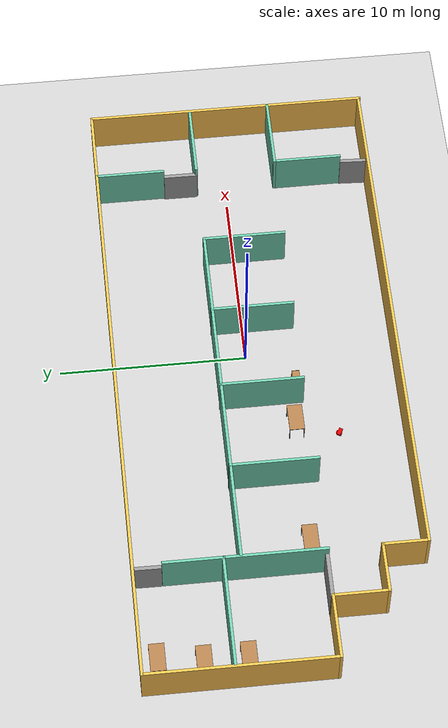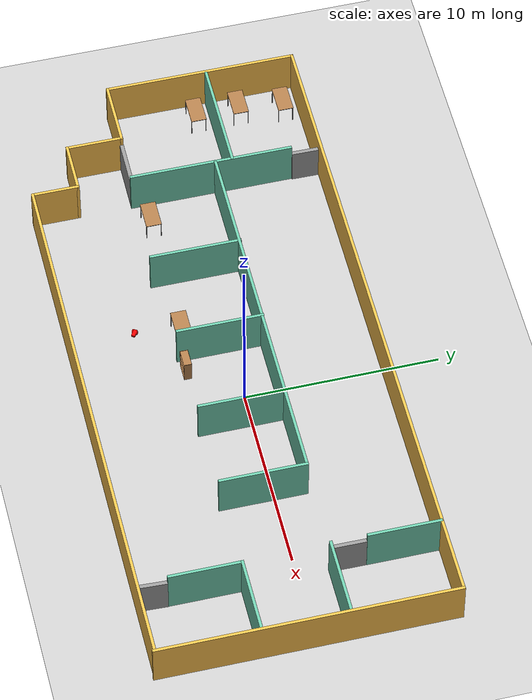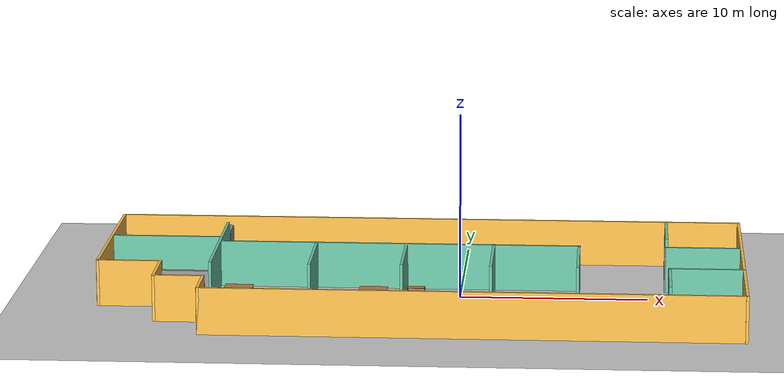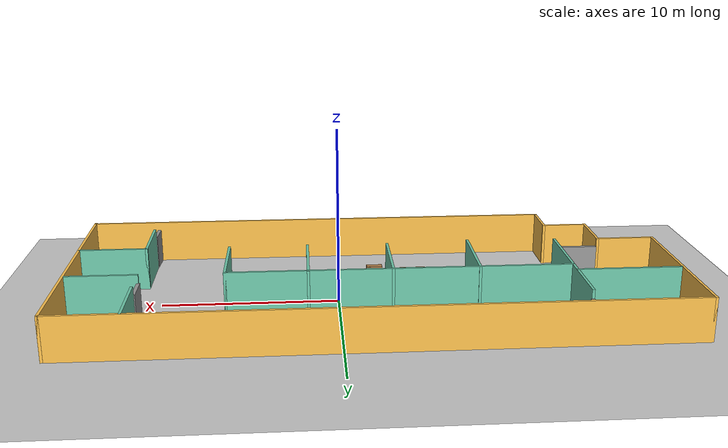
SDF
<sdf version="1.6">
 <world name="default">
  <model name="ground_plane">
   <static>1</static>
   <link name="link">
    <collision name="collision">
     <geometry><plane><normal>0 0 1</normal><size>100 100</size></plane></geometry>
     <surface><friction><ode><mu>100</mu><mu2>50</mu2></ode></friction></surface>
    </collision>
    <visual name="visual">
     <cast_shadows>0</cast_shadows>
     <geometry><plane><normal>0 0 1</normal><size>100 100</size></plane></geometry>
     <material>
      <script><uri>file://media/materials/scripts/gazebo.material</uri><name>Gazebo/Grey</name></script>
     </material>
    </visual>
   </link>
  </model>
  <model name="Building">
   <pose>-2.0428 -0.42646 0 0 -0 0</pose>
   <link name="Door_0">
    <collision name="Door_0_Collision">
     <geometry><box><size>2.58109 0.2 2</size></box></geometry>
     <pose>0 0 1 0 -0 0</pose>
    </collision>
    <visual name="Door_0_Visual">
     <pose>0 0 1 0 -0 0</pose>
     <geometry><box><size>2.58109 0.2 2</size></box></geometry>
     <material>
      <script><uri>file://media/materials/scripts/gazebo.material</uri><name>Gazebo/Grey</name></script>
     </material>
    </visual>
    <pose>-12.3535 -2.32405 0 0 -0 3.13435</pose>
   </link>
   <link name="Door_1">
    <collision name="Door_1_Collision">
     <geometry><box><size>1.8268 0.2 2</size></box></geometry>
     <pose>0 0 1 0 -0 0</pose>
    </collision>
    <visual name="Door_1_Visual">
     <pose>0 0 1 0 -0 0</pose>
     <geometry><box><size>1.8268 0.2 2</size></box></geometry>
     <material>
      <script><uri>file://media/materials/scripts/gazebo.material</uri><name>Gazebo/Grey</name></script>
     </material>
    </visual>
    <pose>13.0292 2.92693 0 0 -0 1.5655</pose>
   </link>
   <link name="Door_2">
    <collision name="Door_2_Collision">
     <geometry><box><size>1.47434 0.2 2</size></box></geometry>
     <pose>0 0 1 0 -0 0</pose>
    </collision>
    <visual name="Door_2_Visual">
     <pose>0 0 1 0 -0 0</pose>
     <geometry><box><size>1.47434 0.2 2</size></box></geometry>
     <material>
      <script><uri>file://media/materials/scripts/gazebo.material</uri><name>Gazebo/Grey</name></script>
     </material>
    </visual>
    <pose>13.1149 -6.73153 0 0 -0 1.52915</pose>
   </link>
   <link name="Door_3">
    <collision name="Door_3_Collision">
     <geometry><box><size>1.38773 0.2 2</size></box></geometry>
     <pose>0 0 1 0 -0 0</pose>
    </collision>
    <visual name="Door_3_Visual">
     <pose>0 0 1 0 -0 0</pose>
     <geometry><box><size>1.38773 0.2 2</size></box></geometry>
     <material>
      <script><uri>file://media/materials/scripts/gazebo.material</uri><name>Gazebo/Grey</name></script>
     </material>
    </visual>
    <pose>-11.0417 6.77121 0 0 0 -1.58178</pose>
   </link>
   <link name="Wall_0">
    <collision name="Wall_0_Collision">
     <geometry><box><size>28.25 0.15 2.5</size></box></geometry>
     <pose>0 0 1.25 0 -0 0</pose>
    </collision>
    <visual name="Wall_0_Visual">
     <pose>0 0 1.25 0 -0 0</pose>
     <geometry><box><size>28.25 0.15 2.5</size></box></geometry>
     <material>
      <script><uri>file://media/materials/scripts/gazebo.material</uri><name>Gazebo/Grey</name></script>
      <ambient>1 0.764706 0.305882 1</ambient>
     </material>
     <meta><layer>0</layer></meta>
    </visual>
    <pose>2.95 -7.5 0 0 -0 0</pose>
   </link>
   <link name="Wall_10">
    <collision name="Wall_10_Collision">
     <geometry><box><size>8.5 0.15 2.5</size></box></geometry>
     <pose>0 0 1.25 0 -0 0</pose>
    </collision>
    <visual name="Wall_10_Visual">
     <pose>0 0 1.25 0 -0 0</pose>
     <geometry><box><size>8.5 0.15 2.5</size></box></geometry>
     <material>
      <script><uri>file://media/materials/scripts/gazebo.material</uri><name>Gazebo/Grey</name></script>
      <ambient>0.435294 0.796078 0.67451 1</ambient>
     </material>
     <meta><layer>0</layer></meta>
    </visual>
    <pose>-11.0694 1.81529 0 0 0 -1.5708</pose>
   </link>
   <link name="Wall_12">
    <collision name="Wall_12_Collision">
     <geometry><box><size>6 0.15 2.5</size></box></geometry>
     <pose>0 0 1.25 0 -0 0</pose>
    </collision>
    <visual name="Wall_12_Visual">
     <pose>0 0 1.25 0 -0 0</pose>
     <geometry><box><size>6 0.15 2.5</size></box></geometry>
     <material>
      <script><uri>file://media/materials/scripts/gazebo.material</uri><name>Gazebo/Grey</name></script>
      <ambient>0.435294 0.796078 0.67451 1</ambient>
     </material>
     <meta><layer>0</layer></meta>
    </visual>
    <pose>-14.0177 2.93127 0 0 -0 0</pose>
   </link>
   <link name="Wall_14">
    <collision name="Wall_14_Collision">
     <geometry><box><size>19.5 0.15 2.5</size></box></geometry>
     <pose>0 0 1.25 0 -0 0</pose>
    </collision>
    <visual name="Wall_14_Visual">
     <pose>0 0 1.25 0 -0 0</pose>
     <geometry><box><size>19.5 0.15 2.5</size></box></geometry>
     <material>
      <script><uri>file://media/materials/scripts/gazebo.material</uri><name>Gazebo/Grey</name></script>
      <ambient>0.435294 0.796078 0.67451 1</ambient>
     </material>
     <meta><layer>0</layer></meta>
    </visual>
    <pose>-1.33323 2.04415 0 0 -0 0</pose>
   </link>
   <link name="Wall_15">
    <collision name="Wall_15_Collision">
     <geometry><box><size>4.5 0.15 2.5</size></box></geometry>
     <pose>0 0 1.25 0 -0 0</pose>
    </collision>
    <visual name="Wall_15_Visual">
     <pose>0 0 1.25 0 -0 0</pose>
     <geometry><box><size>4.5 0.15 2.5</size></box></geometry>
     <material>
      <script><uri>file://media/materials/scripts/gazebo.material</uri><name>Gazebo/Grey</name></script>
      <ambient>0.435294 0.796078 0.67451 1</ambient>
     </material>
     <meta><layer>0</layer></meta>
    </visual>
    <pose>8.34177 -0.130849 0 0 0 -1.5708</pose>
   </link>
   <link name="Wall_17">
    <collision name="Wall_17_Collision">
     <geometry><box><size>4.5 0.15 2.5</size></box></geometry>
     <pose>0 0 1.25 0 -0 0</pose>
    </collision>
    <visual name="Wall_17_Visual">
     <pose>0 0 1.25 0 -0 0</pose>
     <geometry><box><size>4.5 0.15 2.5</size></box></geometry>
     <material>
      <script><uri>file://media/materials/scripts/gazebo.material</uri><name>Gazebo/Grey</name></script>
      <ambient>0.435294 0.796078 0.67451 1</ambient>
     </material>
     <meta><layer>0</layer></meta>
    </visual>
    <pose>-0.944044 -0.100258 0 0 0 -1.5708</pose>
   </link>
   <link name="Wall_19">
    <collision name="Wall_19_Collision">
     <geometry><box><size>4.75 0.15 2.5</size></box></geometry>
     <pose>0 0 1.25 0 -0 0</pose>
    </collision>
    <visual name="Wall_19_Visual">
     <pose>0 0 1.25 0 -0 0</pose>
     <geometry><box><size>4.75 0.15 2.5</size></box></geometry>
     <material>
      <script><uri>file://media/materials/scripts/gazebo.material</uri><name>Gazebo/Grey</name></script>
      <ambient>0.435294 0.796078 0.67451 1</ambient>
     </material>
     <meta><layer>0</layer></meta>
    </visual>
    <pose>-5.80789 -0.225258 0 0 0 -1.5708</pose>
   </link>
   <link name="Wall_2">
    <collision name="Wall_2_Collision">
     <geometry><box><size>2.5 0.15 2.5</size></box></geometry>
     <pose>0 0 1.25 0 -0 0</pose>
    </collision>
    <visual name="Wall_2_Visual">
     <pose>0 0 1.25 0 -0 0</pose>
     <geometry><box><size>2.5 0.15 2.5</size></box></geometry>
     <material>
      <script><uri>file://media/materials/scripts/gazebo.material</uri><name>Gazebo/Grey</name></script>
      <ambient>1 0.764706 0.305882 1</ambient>
     </material>
     <meta><layer>0</layer></meta>
    </visual>
    <pose>-11.1 -6.325 0 0 -0 1.5708</pose>
   </link>
   <link name="Wall_21">
    <collision name="Wall_21_Collision">
     <geometry><box><size>4.5 0.15 2.5</size></box></geometry>
     <pose>0 0 1.25 0 -0 0</pose>
    </collision>
    <visual name="Wall_21_Visual">
     <pose>0 0 1.25 0 -0 0</pose>
     <geometry><box><size>4.5 0.15 2.5</size></box></geometry>
     <material>
      <script><uri>file://media/materials/scripts/gazebo.material</uri><name>Gazebo/Grey</name></script>
      <ambient>0.435294 0.796078 0.67451 1</ambient>
     </material>
     <meta><layer>0</layer></meta>
    </visual>
    <pose>3.76685 -0.100258 0 0 0 -1.5708</pose>
   </link>
   <link name="Wall_25">
    <collision name="Wall_25_Collision">
     <geometry><box><size>4 0.15 2.5</size></box></geometry>
     <pose>0 0 1.25 0 -0 0</pose>
    </collision>
    <visual name="Wall_25_Visual">
     <pose>0 0 1.25 0 -0 0</pose>
     <geometry><box><size>4 0.15 2.5</size></box></geometry>
     <material>
      <script><uri>file://media/materials/scripts/gazebo.material</uri><name>Gazebo/Grey</name></script>
      <ambient>0.435294 0.796078 0.67451 1</ambient>
     </material>
     <meta><layer>0</layer></meta>
    </visual>
    <pose>14.9913 2.04415 0 0 -0 0</pose>
   </link>
   <link name="Wall_27">
    <collision name="Wall_27_Collision">
     <geometry><box><size>4 0.15 2.5</size></box></geometry>
     <pose>0 0 1.25 0 -0 0</pose>
    </collision>
    <visual name="Wall_27_Visual">
     <pose>0 0 1.25 0 -0 0</pose>
     <geometry><box><size>4 0.15 2.5</size></box></geometry>
     <material>
      <script><uri>file://media/materials/scripts/gazebo.material</uri><name>Gazebo/Grey</name></script>
      <ambient>0.435294 0.796078 0.67451 1</ambient>
     </material>
     <meta><layer>0</layer></meta>
    </visual>
    <pose>15.0831 -2.33025 0 0 -0 0</pose>
   </link>
   <link name="Wall_29">
    <collision name="Wall_29_Collision">
     <geometry><box><size>3.75 0.15 2.5</size></box></geometry>
     <pose>0 0 1.25 0 -0 0</pose>
    </collision>
    <visual name="Wall_29_Visual">
     <pose>0 0 1.25 0 -0 0</pose>
     <geometry><box><size>3.75 0.15 2.5</size></box></geometry>
     <material>
      <script><uri>file://media/materials/scripts/gazebo.material</uri><name>Gazebo/Grey</name></script>
      <ambient>0.435294 0.796078 0.67451 1</ambient>
     </material>
     <meta><layer>0</layer></meta>
    </visual>
    <pose>13.1581 -4.13025 0 0 0 -1.5708</pose>
   </link>
   <link name="Wall_3">
    <collision name="Wall_3_Collision">
     <geometry><box><size>2.75 0.15 2.5</size></box></geometry>
     <pose>0 0 1.25 0 -0 0</pose>
    </collision>
    <visual name="Wall_3_Visual">
     <pose>0 0 1.25 0 -0 0</pose>
     <geometry><box><size>2.75 0.15 2.5</size></box></geometry>
     <material>
      <script><uri>file://media/materials/scripts/gazebo.material</uri><name>Gazebo/Grey</name></script>
      <ambient>1 0.764706 0.305882 1</ambient>
     </material>
     <meta><layer>0</layer></meta>
    </visual>
    <pose>-12.4 -5.15 0 0 -0 3.14159</pose>
   </link>
   <link name="Wall_31">
    <collision name="Wall_31_Collision">
     <geometry><box><size>3.75 0.15 2.5</size></box></geometry>
     <pose>0 0 1.25 0 -0 0</pose>
    </collision>
    <visual name="Wall_31_Visual">
     <pose>0 0 1.25 0 -0 0</pose>
     <geometry><box><size>3.75 0.15 2.5</size></box></geometry>
     <material>
      <script><uri>file://media/materials/scripts/gazebo.material</uri><name>Gazebo/Grey</name></script>
      <ambient>0.435294 0.796078 0.67451 1</ambient>
     </material>
     <meta><layer>0</layer></meta>
    </visual>
    <pose>13.0663 5.71016 0 0 -0 1.5708</pose>
   </link>
   <link name="Wall_4">
    <collision name="Wall_4_Collision">
     <geometry><box><size>3 0.15 2.5</size></box></geometry>
     <pose>0 0 1.25 0 -0 0</pose>
    </collision>
    <visual name="Wall_4_Visual">
     <pose>0 0 1.25 0 -0 0</pose>
     <geometry><box><size>3 0.15 2.5</size></box></geometry>
     <material>
      <script><uri>file://media/materials/scripts/gazebo.material</uri><name>Gazebo/Grey</name></script>
      <ambient>1 0.764706 0.305882 1</ambient>
     </material>
     <meta><layer>0</layer></meta>
    </visual>
    <pose>-13.7 -3.725 0 0 -0 1.5708</pose>
   </link>
   <link name="Wall_5">
    <collision name="Wall_5_Collision">
     <geometry><box><size>3.5 0.15 2.5</size></box></geometry>
     <pose>0 0 1.25 0 -0 0</pose>
    </collision>
    <visual name="Wall_5_Visual">
     <pose>0 0 1.25 0 -0 0</pose>
     <geometry><box><size>3.5 0.15 2.5</size></box></geometry>
     <material>
      <script><uri>file://media/materials/scripts/gazebo.material</uri><name>Gazebo/Grey</name></script>
      <ambient>1 0.764706 0.305882 1</ambient>
     </material>
     <meta><layer>0</layer></meta>
    </visual>
    <pose>-15.375 -2.3 0 0 -0 3.14159</pose>
   </link>
   <link name="Wall_6">
    <collision name="Wall_6_Collision">
     <geometry><box><size>10 0.15 2.5</size></box></geometry>
     <pose>0 0 1.25 0 -0 0</pose>
    </collision>
    <visual name="Wall_6_Visual">
     <pose>0 0 1.25 0 -0 0</pose>
     <geometry><box><size>10 0.15 2.5</size></box></geometry>
     <material>
      <script><uri>file://media/materials/scripts/gazebo.material</uri><name>Gazebo/Grey</name></script>
      <ambient>1 0.764706 0.305882 1</ambient>
     </material>
     <meta><layer>0</layer></meta>
    </visual>
    <pose>-17.05 2.625 0 0 -0 1.5708</pose>
   </link>
   <link name="Wall_7">
    <collision name="Wall_7_Collision">
     <geometry><box><size>34.25 0.15 2.5</size></box></geometry>
     <pose>0 0 1.25 0 -0 0</pose>
    </collision>
    <visual name="Wall_7_Visual">
     <pose>0 0 1.25 0 -0 0</pose>
     <geometry><box><size>34.25 0.15 2.5</size></box></geometry>
     <material>
      <script><uri>file://media/materials/scripts/gazebo.material</uri><name>Gazebo/Grey</name></script>
      <ambient>1 0.764706 0.305882 1</ambient>
     </material>
     <meta><layer>0</layer></meta>
    </visual>
    <pose>0 7.55 0 0 -0 0</pose>
   </link>
   <link name="Wall_8">
    <collision name="Wall_8_Collision">
     <geometry><box><size>15.25 0.15 2.5</size></box></geometry>
     <pose>0 0 1.25 0 -0 0</pose>
    </collision>
    <visual name="Wall_8_Visual">
     <pose>0 0 1.25 0 -0 0</pose>
     <geometry><box><size>15.25 0.15 2.5</size></box></geometry>
     <material>
      <script><uri>file://media/materials/scripts/gazebo.material</uri><name>Gazebo/Grey</name></script>
      <ambient>1 0.764706 0.305882 1</ambient>
     </material>
     <meta><layer>0</layer></meta>
    </visual>
    <pose>17.05 0 0 0 0 -1.5708</pose>
   </link>
   <static>1</static>
  </model>
  <model name="HumanoidRobot">
   <link name="link_0">
    <pose>-0.053333 0.003341 0 0 -0 0</pose>
    <inertial>
     <mass>1</mass>
     <inertia>
      <ixx>0.166667</ixx>
      <ixy>0</ixy>
      <ixz>0</ixz>
      <iyy>0.166667</iyy>
      <iyz>0</iyz>
      <izz>0.166667</izz>
     </inertia>
    </inertial>
    <visual name="ModelPreview_0::link_0::visual_1">
     <pose>-0.15 0 -0.05 0 -0 0</pose>
     <geometry><sphere><radius>0.05</radius></sphere></geometry>
     <material>
      <lighting>1</lighting>
      <script><uri>file://media/materials/scripts/gazebo.material</uri><name>Gazebo/Grey</name></script>
      <shader type="pixel"><normal_map>__default__</normal_map></shader>
      <ambient>1 0 0 1</ambient>
      <diffuse>1 0 0 1</diffuse>
      <specular>1 0 0 1</specular>
      <emissive>0 0 0 1</emissive>
     </material>
    </visual>
    <visual name="visual">
     <geometry><box><size>0.4 0.2 0.1</size></box></geometry>
     <material>
      <lighting>1</lighting>
      <script><uri>file://media/materials/scripts/gazebo.material</uri><name>Gazebo/Grey</name></script>
      <shader type="pixel"><normal_map>__default__</normal_map></shader>
      <ambient>1 0 0 1</ambient>
      <diffuse>1 0 0 1</diffuse>
      <specular>1 0 0 1</specular>
      <emissive>0 0 0 1</emissive>
     </material>
    </visual>
    <collision name="collision_1">
     <pose>-0.15 0 -0.05 0 -0 0</pose>
     <geometry><sphere><radius>0.05</radius></sphere></geometry>
     <surface>
      <friction>
       <ode><mu>0</mu><mu2>0</mu2><fdir1>0 0 0</fdir1><slip1>1</slip1><slip2>1</slip2></ode>
       <torsional>
        <coefficient>1</coefficient>
        <patch_radius>0</patch_radius>
        <surface_radius>0</surface_radius>
        <use_patch_radius>1</use_patch_radius>
        <ode><slip>0</slip></ode>
       </torsional>
      </friction>
      <bounce><restitution_coefficient>0</restitution_coefficient><threshold>1e+06</threshold></bounce>
      <contact>
       <collide_without_contact>0</collide_without_contact>
       <collide_without_contact_bitmask>1</collide_without_contact_bitmask>
       <collide_bitmask>1</collide_bitmask>
       <ode>
        <soft_cfm>0</soft_cfm>
        <soft_erp>0.2</soft_erp>
        <kp>1e+13</kp>
        <kd>1</kd>
        <max_vel>0.01</max_vel>
        <min_depth>0</min_depth>
       </ode>
       <bullet>
        <split_impulse>1</split_impulse>
        <split_impulse_penetration_threshold>-0.01</split_impulse_penetration_threshold>
        <soft_cfm>0</soft_cfm>
        <soft_erp>0.2</soft_erp>
        <kp>1e+13</kp>
        <kd>1</kd>
       </bullet>
      </contact>
     </surface>
    </collision>
    <collision name="collision">
     <geometry><box><size>0.4 0.2 0.1</size></box></geometry>
     <surface>
      <friction>
       <ode><mu>1</mu><mu2>1</mu2><fdir1>0 0 0</fdir1><slip1>0</slip1><slip2>0</slip2></ode>
       <torsional>
        <coefficient>1</coefficient>
        <patch_radius>0</patch_radius>
        <surface_radius>0</surface_radius>
        <use_patch_radius>1</use_patch_radius>
        <ode><slip>0</slip></ode>
       </torsional>
      </friction>
      <bounce><restitution_coefficient>0</restitution_coefficient><threshold>1e+06</threshold></bounce>
      <contact>
       <collide_without_contact>0</collide_without_contact>
       <collide_without_contact_bitmask>1</collide_without_contact_bitmask>
       <collide_bitmask>1</collide_bitmask>
       <ode>
        <soft_cfm>0</soft_cfm>
        <soft_erp>0.2</soft_erp>
        <kp>1e+13</kp>
        <kd>1</kd>
        <max_vel>0.01</max_vel>
        <min_depth>0</min_depth>
       </ode>
       <bullet>
        <split_impulse>1</split_impulse>
        <split_impulse_penetration_threshold>-0.01</split_impulse_penetration_threshold>
        <soft_cfm>0</soft_cfm>
        <soft_erp>0.2</soft_erp>
        <kp>1e+13</kp>
        <kd>1</kd>
       </bullet>
      </contact>
     </surface>
    </collision>
   </link>
   <link name="link_1">
    <pose>0.006667 -0.121672 0 1.5707 -0 0</pose>
    <inertial>
     <mass>1</mass>
     <inertia><ixx>0.145833</ixx><ixy>0</ixy><ixz>0</ixz><iyy>0.145833</iyy><iyz>0</iyz><izz>0.125</izz></inertia>
    </inertial>
    <visual name="visual">
     <geometry><cylinder><radius>0.1</radius><length>0.05</length></cylinder></geometry>
     <material>
      <lighting>1</lighting>
      <script><uri>file://media/materials/scripts/gazebo.material</uri><name>Gazebo/Grey</name></script>
      <shader type="pixel"><normal_map>__default__</normal_map></shader>
      <ambient>1 0 0 1</ambient>
      <diffuse>1 0 0 1</diffuse>
      <specular>1 0 0 1</specular>
      <emissive>0 0 0 1</emissive>
     </material>
    </visual>
    <collision name="collision">
     <geometry><cylinder><radius>0.1</radius><length>0.05</length></cylinder></geometry>
     <surface>
      <friction>
       <ode><mu>1</mu><mu2>1</mu2><fdir1>0 0 0</fdir1><slip1>0</slip1><slip2>0</slip2></ode>
       <torsional>
        <coefficient>1</coefficient>
        <patch_radius>0</patch_radius>
        <surface_radius>0</surface_radius>
        <use_patch_radius>1</use_patch_radius>
        <ode><slip>0</slip></ode>
       </torsional>
      </friction>
      <bounce><restitution_coefficient>0</restitution_coefficient><threshold>1e+06</threshold></bounce>
      <contact>
       <collide_without_contact>0</collide_without_contact>
       <collide_without_contact_bitmask>1</collide_without_contact_bitmask>
       <collide_bitmask>1</collide_bitmask>
       <ode>
        <soft_cfm>0</soft_cfm>
        <soft_erp>0.2</soft_erp>
        <kp>1e+13</kp>
        <kd>1</kd>
        <max_vel>0.01</max_vel>
        <min_depth>0</min_depth>
       </ode>
       <bullet>
        <split_impulse>1</split_impulse>
        <split_impulse_penetration_threshold>-0.01</split_impulse_penetration_threshold>
        <soft_cfm>0</soft_cfm>
        <soft_erp>0.2</soft_erp>
        <kp>1e+13</kp>
        <kd>1</kd>
       </bullet>
      </contact>
     </surface>
    </collision>
   </link>
   <link name="link_1_clone">
    <pose>0.046667 0.118331 0 1.5707 -0 0</pose>
    <inertial>
     <mass>1</mass>
     <inertia><ixx>0.145833</ixx><ixy>0</ixy><ixz>0</ixz><iyy>0.145833</iyy><iyz>0</iyz><izz>0.125</izz></inertia>
    </inertial>
    <visual name="visual">
     <geometry><cylinder><radius>0.1</radius><length>0.05</length></cylinder></geometry>
     <material>
      <lighting>1</lighting>
      <script><uri>file://media/materials/scripts/gazebo.material</uri><name>Gazebo/Grey</name></script>
      <shader type="pixel"><normal_map>__default__</normal_map></shader>
      <ambient>1 0 0 1</ambient>
      <diffuse>1 0 0 1</diffuse>
      <specular>1 0 0 1</specular>
      <emissive>0 0 0 1</emissive>
     </material>
    </visual>
    <collision name="collision">
     <geometry><cylinder><radius>0.1</radius><length>0.05</length></cylinder></geometry>
     <surface>
      <friction>
       <ode><mu>1</mu><mu2>1</mu2><fdir1>0 0 0</fdir1><slip1>0</slip1><slip2>0</slip2></ode>
       <torsional>
        <coefficient>1</coefficient>
        <patch_radius>0</patch_radius>
        <surface_radius>0</surface_radius>
        <use_patch_radius>1</use_patch_radius>
        <ode><slip>0</slip></ode>
       </torsional>
      </friction>
      <bounce><restitution_coefficient>0</restitution_coefficient><threshold>1e+06</threshold></bounce>
      <contact>
       <collide_without_contact>0</collide_without_contact>
       <collide_without_contact_bitmask>1</collide_without_contact_bitmask>
       <collide_bitmask>1</collide_bitmask>
       <ode>
        <soft_cfm>0</soft_cfm>
        <soft_erp>0.2</soft_erp>
        <kp>1e+13</kp>
        <kd>1</kd>
        <max_vel>0.01</max_vel>
        <min_depth>0</min_depth>
       </ode>
       <bullet>
        <split_impulse>1</split_impulse>
        <split_impulse_penetration_threshold>-0.01</split_impulse_penetration_threshold>
        <soft_cfm>0</soft_cfm>
        <soft_erp>0.2</soft_erp>
        <kp>1e+13</kp>
        <kd>1</kd>
       </bullet>
      </contact>
     </surface>
    </collision>
   </link>
   <joint name="link_0_JOINT_0" type="revolute">
    <parent>link_0</parent>
    <child>link_1</child>
    <axis>
     <xyz>0 0 1</xyz>
     <use_parent_model_frame>0</use_parent_model_frame>
     <limit>
      <lower>-1.79769e+308</lower>
      <upper>1.79769e+308</upper>
      <effort>-1</effort>
      <velocity>-1</velocity>
     </limit>
     <dynamics>
      <spring_reference>0</spring_reference>
      <spring_stiffness>0</spring_stiffness>
      <damping>0</damping>
     </dynamics>
    </axis>
    <physics>
     <ode><limit><cfm>0</cfm><erp>0.2</erp></limit><suspension><cfm>0</cfm><erp>0.2</erp></suspension></ode>
    </physics>
   </joint>
   <joint name="link_0_JOINT_1" type="revolute">
    <parent>link_0</parent>
    <child>link_1_clone</child>
    <axis>
     <xyz>0 0 1</xyz>
     <use_parent_model_frame>0</use_parent_model_frame>
     <limit>
      <lower>-1.79769e+308</lower>
      <upper>1.79769e+308</upper>
      <effort>-1</effort>
      <velocity>-1</velocity>
     </limit>
     <dynamics>
      <spring_reference>0</spring_reference>
      <spring_stiffness>0</spring_stiffness>
      <damping>0</damping>
     </dynamics>
    </axis>
    <physics>
     <ode><limit><cfm>0</cfm><erp>0.2</erp></limit><suspension><cfm>0</cfm><erp>0.2</erp></suspension></ode>
    </physics>
   </joint>
   <static>0</static>
   <pose>-5.15019 -4.44642 0.099998 -1.3e-05 1.2e-05 2.62297</pose>
  </model>
  <model name="table_clone_clone">
   <static>1</static>
   <link name="link">
    <collision name="surface">
     <pose>0 0 1 0 -0 0</pose>
     <geometry><box><size>1.5 0.8 0.03</size></box></geometry>
     <surface><friction><ode><mu>0.6</mu><mu2>0.6</mu2></ode></friction></surface>
    </collision>
    <visual name="visual1">
     <pose>0 0 1 0 -0 0</pose>
     <geometry><box><size>1.5 0.8 0.03</size></box></geometry>
     <material>
      <script><uri>file://media/materials/scripts/gazebo.material</uri><name>Gazebo/Wood</name></script>
     </material>
    </visual>
    <collision name="front_left_leg">
     <pose>0.68 0.38 0.5 0 -0 0</pose>
     <geometry><cylinder><radius>0.02</radius><length>1</length></cylinder></geometry>
    </collision>
    <visual name="front_left_leg">
     <pose>0.68 0.38 0.5 0 -0 0</pose>
     <geometry><cylinder><radius>0.02</radius><length>1</length></cylinder></geometry>
     <material>
      <script><uri>file://media/materials/scripts/gazebo.material</uri><name>Gazebo/Grey</name></script>
     </material>
    </visual>
    <collision name="front_right_leg">
     <pose>0.68 -0.38 0.5 0 -0 0</pose>
     <geometry><cylinder><radius>0.02</radius><length>1</length></cylinder></geometry>
    </collision>
    <visual name="front_right_leg">
     <pose>0.68 -0.38 0.5 0 -0 0</pose>
     <geometry><cylinder><radius>0.02</radius><length>1</length></cylinder></geometry>
     <material>
      <script><uri>file://media/materials/scripts/gazebo.material</uri><name>Gazebo/Grey</name></script>
     </material>
    </visual>
    <collision name="back_right_leg">
     <pose>-0.68 -0.38 0.5 0 -0 0</pose>
     <geometry><cylinder><radius>0.02</radius><length>1</length></cylinder></geometry>
    </collision>
    <visual name="back_right_leg">
     <pose>-0.68 -0.38 0.5 0 -0 0</pose>
     <geometry><cylinder><radius>0.02</radius><length>1</length></cylinder></geometry>
     <material>
      <script><uri>file://media/materials/scripts/gazebo.material</uri><name>Gazebo/Grey</name></script>
     </material>
    </visual>
    <collision name="back_left_leg">
     <pose>-0.68 0.38 0.5 0 -0 0</pose>
     <geometry><cylinder><radius>0.02</radius><length>1</length></cylinder></geometry>
    </collision>
    <visual name="back_left_leg">
     <pose>-0.68 0.38 0.5 0 -0 0</pose>
     <geometry><cylinder><radius>0.02</radius><length>1</length></cylinder></geometry>
     <material>
      <script><uri>file://media/materials/scripts/gazebo.material</uri><name>Gazebo/Grey</name></script>
     </material>
    </visual>
   </link>
   <pose>-4.50263 -2.177 0 0 -0 0</pose>
  </model>
  <model name="table_clone_clone_0">
   <static>1</static>
   <link name="link">
    <collision name="surface">
     <pose>0 0 1 0 -0 0</pose>
     <geometry><box><size>1.5 0.8 0.03</size></box></geometry>
     <surface><friction><ode><mu>0.6</mu><mu2>0.6</mu2></ode></friction></surface>
    </collision>
    <visual name="visual1">
     <pose>0 0 1 0 -0 0</pose>
     <geometry><box><size>1.5 0.8 0.03</size></box></geometry>
     <material>
      <script><uri>file://media/materials/scripts/gazebo.material</uri><name>Gazebo/Wood</name></script>
     </material>
    </visual>
    <collision name="front_left_leg">
     <pose>0.68 0.38 0.5 0 -0 0</pose>
     <geometry><cylinder><radius>0.02</radius><length>1</length></cylinder></geometry>
    </collision>
    <visual name="front_left_leg">
     <pose>0.68 0.38 0.5 0 -0 0</pose>
     <geometry><cylinder><radius>0.02</radius><length>1</length></cylinder></geometry>
     <material>
      <script><uri>file://media/materials/scripts/gazebo.material</uri><name>Gazebo/Grey</name></script>
     </material>
    </visual>
    <collision name="front_right_leg">
     <pose>0.68 -0.38 0.5 0 -0 0</pose>
     <geometry><cylinder><radius>0.02</radius><length>1</length></cylinder></geometry>
    </collision>
    <visual name="front_right_leg">
     <pose>0.68 -0.38 0.5 0 -0 0</pose>
     <geometry><cylinder><radius>0.02</radius><length>1</length></cylinder></geometry>
     <material>
      <script><uri>file://media/materials/scripts/gazebo.material</uri><name>Gazebo/Grey</name></script>
     </material>
    </visual>
    <collision name="back_right_leg">
     <pose>-0.68 -0.38 0.5 0 -0 0</pose>
     <geometry><cylinder><radius>0.02</radius><length>1</length></cylinder></geometry>
    </collision>
    <visual name="back_right_leg">
     <pose>-0.68 -0.38 0.5 0 -0 0</pose>
     <geometry><cylinder><radius>0.02</radius><length>1</length></cylinder></geometry>
     <material>
      <script><uri>file://media/materials/scripts/gazebo.material</uri><name>Gazebo/Grey</name></script>
     </material>
    </visual>
    <collision name="back_left_leg">
     <pose>-0.68 0.38 0.5 0 -0 0</pose>
     <geometry><cylinder><radius>0.02</radius><length>1</length></cylinder></geometry>
    </collision>
    <visual name="back_left_leg">
     <pose>-0.68 0.38 0.5 0 -0 0</pose>
     <geometry><cylinder><radius>0.02</radius><length>1</length></cylinder></geometry>
     <material>
      <script><uri>file://media/materials/scripts/gazebo.material</uri><name>Gazebo/Grey</name></script>
     </material>
    </visual>
   </link>
   <pose>-11.6594 -2.12861 0 0 -0 0</pose>
  </model>
  <model name="table_clone_clone_0_clone">
   <static>1</static>
   <link name="link">
    <collision name="surface">
     <pose>0 0 1 0 -0 0</pose>
     <geometry><box><size>1.5 0.8 0.03</size></box></geometry>
     <surface><friction><ode><mu>0.6</mu><mu2>0.6</mu2></ode></friction></surface>
    </collision>
    <visual name="visual1">
     <pose>0 0 1 0 -0 0</pose>
     <geometry><box><size>1.5 0.8 0.03</size></box></geometry>
     <material>
      <script><uri>file://media/materials/scripts/gazebo.material</uri><name>Gazebo/Wood</name></script>
     </material>
    </visual>
    <collision name="front_left_leg">
     <pose>0.68 0.38 0.5 0 -0 0</pose>
     <geometry><cylinder><radius>0.02</radius><length>1</length></cylinder></geometry>
    </collision>
    <visual name="front_left_leg">
     <pose>0.68 0.38 0.5 0 -0 0</pose>
     <geometry><cylinder><radius>0.02</radius><length>1</length></cylinder></geometry>
     <material>
      <script><uri>file://media/materials/scripts/gazebo.material</uri><name>Gazebo/Grey</name></script>
     </material>
    </visual>
    <collision name="front_right_leg">
     <pose>0.68 -0.38 0.5 0 -0 0</pose>
     <geometry><cylinder><radius>0.02</radius><length>1</length></cylinder></geometry>
    </collision>
    <visual name="front_right_leg">
     <pose>0.68 -0.38 0.5 0 -0 0</pose>
     <geometry><cylinder><radius>0.02</radius><length>1</length></cylinder></geometry>
     <material>
      <script><uri>file://media/materials/scripts/gazebo.material</uri><name>Gazebo/Grey</name></script>
     </material>
    </visual>
    <collision name="back_right_leg">
     <pose>-0.68 -0.38 0.5 0 -0 0</pose>
     <geometry><cylinder><radius>0.02</radius><length>1</length></cylinder></geometry>
    </collision>
    <visual name="back_right_leg">
     <pose>-0.68 -0.38 0.5 0 -0 0</pose>
     <geometry><cylinder><radius>0.02</radius><length>1</length></cylinder></geometry>
     <material>
      <script><uri>file://media/materials/scripts/gazebo.material</uri><name>Gazebo/Grey</name></script>
     </material>
    </visual>
    <collision name="back_left_leg">
     <pose>-0.68 0.38 0.5 0 -0 0</pose>
     <geometry><cylinder><radius>0.02</radius><length>1</length></cylinder></geometry>
    </collision>
    <visual name="back_left_leg">
     <pose>-0.68 0.38 0.5 0 -0 0</pose>
     <geometry><cylinder><radius>0.02</radius><length>1</length></cylinder></geometry>
     <material>
      <script><uri>file://media/materials/scripts/gazebo.material</uri><name>Gazebo/Grey</name></script>
     </material>
    </visual>
   </link>
   <pose>-17.8941 1.68312 0 0 -0 0</pose>
  </model>
  <model name="table_clone_clone_0_clone_1">
   <static>1</static>
   <link name="link">
    <collision name="surface">
     <pose>0 0 1 0 -0 0</pose>
     <geometry><box><size>1.5 0.8 0.03</size></box></geometry>
     <surface><friction><ode><mu>0.6</mu><mu2>0.6</mu2></ode></friction></surface>
    </collision>
    <visual name="visual1">
     <pose>0 0 1 0 -0 0</pose>
     <geometry><box><size>1.5 0.8 0.03</size></box></geometry>
     <material>
      <script><uri>file://media/materials/scripts/gazebo.material</uri><name>Gazebo/Wood</name></script>
     </material>
    </visual>
    <collision name="front_left_leg">
     <pose>0.68 0.38 0.5 0 -0 0</pose>
     <geometry><cylinder><radius>0.02</radius><length>1</length></cylinder></geometry>
    </collision>
    <visual name="front_left_leg">
     <pose>0.68 0.38 0.5 0 -0 0</pose>
     <geometry><cylinder><radius>0.02</radius><length>1</length></cylinder></geometry>
     <material>
      <script><uri>file://media/materials/scripts/gazebo.material</uri><name>Gazebo/Grey</name></script>
     </material>
    </visual>
    <collision name="front_right_leg">
     <pose>0.68 -0.38 0.5 0 -0 0</pose>
     <geometry><cylinder><radius>0.02</radius><length>1</length></cylinder></geometry>
    </collision>
    <visual name="front_right_leg">
     <pose>0.68 -0.38 0.5 0 -0 0</pose>
     <geometry><cylinder><radius>0.02</radius><length>1</length></cylinder></geometry>
     <material>
      <script><uri>file://media/materials/scripts/gazebo.material</uri><name>Gazebo/Grey</name></script>
     </material>
    </visual>
    <collision name="back_right_leg">
     <pose>-0.68 -0.38 0.5 0 -0 0</pose>
     <geometry><cylinder><radius>0.02</radius><length>1</length></cylinder></geometry>
    </collision>
    <visual name="back_right_leg">
     <pose>-0.68 -0.38 0.5 0 -0 0</pose>
     <geometry><cylinder><radius>0.02</radius><length>1</length></cylinder></geometry>
     <material>
      <script><uri>file://media/materials/scripts/gazebo.material</uri><name>Gazebo/Grey</name></script>
     </material>
    </visual>
    <collision name="back_left_leg">
     <pose>-0.68 0.38 0.5 0 -0 0</pose>
     <geometry><cylinder><radius>0.02</radius><length>1</length></cylinder></geometry>
    </collision>
    <visual name="back_left_leg">
     <pose>-0.68 0.38 0.5 0 -0 0</pose>
     <geometry><cylinder><radius>0.02</radius><length>1</length></cylinder></geometry>
     <material>
      <script><uri>file://media/materials/scripts/gazebo.material</uri><name>Gazebo/Grey</name></script>
     </material>
    </visual>
   </link>
   <pose>-17.891 3.94187 0 0 -0 0</pose>
  </model>
  <model name="table_clone_clone_0_clone_2">
   <static>1</static>
   <link name="link">
    <collision name="surface">
     <pose>0 0 1 0 -0 0</pose>
     <geometry><box><size>1.5 0.8 0.03</size></box></geometry>
     <surface><friction><ode><mu>0.6</mu><mu2>0.6</mu2></ode></friction></surface>
    </collision>
    <visual name="visual1">
     <pose>0 0 1 0 -0 0</pose>
     <geometry><box><size>1.5 0.8 0.03</size></box></geometry>
     <material>
      <script><uri>file://media/materials/scripts/gazebo.material</uri><name>Gazebo/Wood</name></script>
     </material>
    </visual>
    <collision name="front_left_leg">
     <pose>0.68 0.38 0.5 0 -0 0</pose>
     <geometry><cylinder><radius>0.02</radius><length>1</length></cylinder></geometry>
    </collision>
    <visual name="front_left_leg">
     <pose>0.68 0.38 0.5 0 -0 0</pose>
     <geometry><cylinder><radius>0.02</radius><length>1</length></cylinder></geometry>
     <material>
      <script><uri>file://media/materials/scripts/gazebo.material</uri><name>Gazebo/Grey</name></script>
     </material>
    </visual>
    <collision name="front_right_leg">
     <pose>0.68 -0.38 0.5 0 -0 0</pose>
     <geometry><cylinder><radius>0.02</radius><length>1</length></cylinder></geometry>
    </collision>
    <visual name="front_right_leg">
     <pose>0.68 -0.38 0.5 0 -0 0</pose>
     <geometry><cylinder><radius>0.02</radius><length>1</length></cylinder></geometry>
     <material>
      <script><uri>file://media/materials/scripts/gazebo.material</uri><name>Gazebo/Grey</name></script>
     </material>
    </visual>
    <collision name="back_right_leg">
     <pose>-0.68 -0.38 0.5 0 -0 0</pose>
     <geometry><cylinder><radius>0.02</radius><length>1</length></cylinder></geometry>
    </collision>
    <visual name="back_right_leg">
     <pose>-0.68 -0.38 0.5 0 -0 0</pose>
     <geometry><cylinder><radius>0.02</radius><length>1</length></cylinder></geometry>
     <material>
      <script><uri>file://media/materials/scripts/gazebo.material</uri><name>Gazebo/Grey</name></script>
     </material>
    </visual>
    <collision name="back_left_leg">
     <pose>-0.68 0.38 0.5 0 -0 0</pose>
     <geometry><cylinder><radius>0.02</radius><length>1</length></cylinder></geometry>
    </collision>
    <visual name="back_left_leg">
     <pose>-0.68 0.38 0.5 0 -0 0</pose>
     <geometry><cylinder><radius>0.02</radius><length>1</length></cylinder></geometry>
     <material>
      <script><uri>file://media/materials/scripts/gazebo.material</uri><name>Gazebo/Grey</name></script>
     </material>
    </visual>
   </link>
   <pose>-17.5749 6.26542 0 0 -0 0</pose>
  </model>
  <model name="bookshelf">
   <static>1</static>
   <link name="link">
    <inertial><mass>1</mass></inertial>
    <collision name="back">
     <pose>0 0.005 0.6 0 -0 0</pose>
     <geometry><box><size>0.9 0.01 1.2</size></box></geometry>
    </collision>
    <visual name="visual1">
     <pose>0 0.005 0.6 0 -0 0</pose>
     <geometry><box><size>0.9 0.01 1.2</size></box></geometry>
     <material>
      <script><uri>file://media/materials/scripts/gazebo.material</uri><name>Gazebo/Wood</name></script>
     </material>
    </visual>
    <collision name="left_side">
     <pose>0.45 -0.195 0.6 0 -0 0</pose>
     <geometry><box><size>0.02 0.4 1.2</size></box></geometry>
    </collision>
    <visual name="visual2">
     <pose>0.45 -0.195 0.6 0 -0 0</pose>
     <geometry><box><size>0.02 0.4 1.2</size></box></geometry>
     <material>
      <script><uri>file://media/materials/scripts/gazebo.material</uri><name>Gazebo/Wood</name></script>
     </material>
    </visual>
    <collision name="right_side">
     <pose>-0.45 -0.195 0.6 0 -0 0</pose>
     <geometry><box><size>0.02 0.4 1.2</size></box></geometry>
    </collision>
    <visual name="visual3">
     <pose>-0.45 -0.195 0.6 0 -0 0</pose>
     <geometry><box><size>0.02 0.4 1.2</size></box></geometry>
     <material>
      <script><uri>file://media/materials/scripts/gazebo.material</uri><name>Gazebo/Wood</name></script>
     </material>
    </visual>
    <collision name="bottom">
     <pose>0 -0.195 0.03 0 -0 0</pose>
     <geometry><box><size>0.88 0.4 0.06</size></box></geometry>
    </collision>
    <visual name="visual4">
     <pose>0 -0.195 0.03 0 -0 0</pose>
     <geometry><box><size>0.88 0.4 0.06</size></box></geometry>
     <material>
      <script><uri>file://media/materials/scripts/gazebo.material</uri><name>Gazebo/Wood</name></script>
     </material>
    </visual>
    <collision name="top">
     <pose>0 -0.195 1.19 0 -0 0</pose>
     <geometry><box><size>0.88 0.4 0.02</size></box></geometry>
    </collision>
    <visual name="visual5">
     <pose>0 -0.195 1.19 0 -0 0</pose>
     <geometry><box><size>0.88 0.4 0.02</size></box></geometry>
     <material>
      <script><uri>file://media/materials/scripts/gazebo.material</uri><name>Gazebo/Wood</name></script>
     </material>
    </visual>
    <collision name="low_shelf">
     <pose>0 -0.195 0.43 0 -0 0</pose>
     <geometry><box><size>0.88 0.4 0.02</size></box></geometry>
    </collision>
    <visual name="visual6">
     <pose>0 -0.195 0.43 0 -0 0</pose>
     <geometry><box><size>0.88 0.4 0.02</size></box></geometry>
     <material>
      <script><uri>file://media/materials/scripts/gazebo.material</uri><name>Gazebo/Wood</name></script>
     </material>
    </visual>
    <collision name="high_shelf">
     <pose>0 -0.195 0.8 0 -0 0</pose>
     <geometry><box><size>0.88 0.4 0.02</size></box></geometry>
    </collision>
    <visual name="visual7">
     <pose>0 -0.195 0.8 0 -0 0</pose>
     <geometry><box><size>0.88 0.4 0.02</size></box></geometry>
     <material>
      <script><uri>file://media/materials/scripts/gazebo.material</uri><name>Gazebo/Wood</name></script>
     </material>
    </visual>
   </link>
   <pose>-2.21493 -2.27432 0 0 -0 0</pose>
  </model>
 </world>
</sdf>
